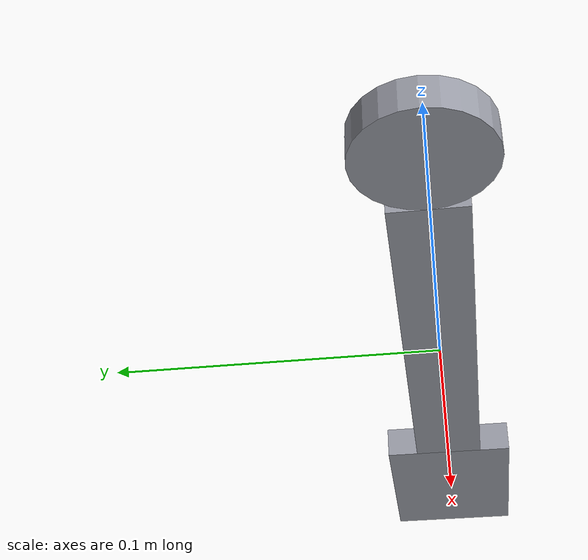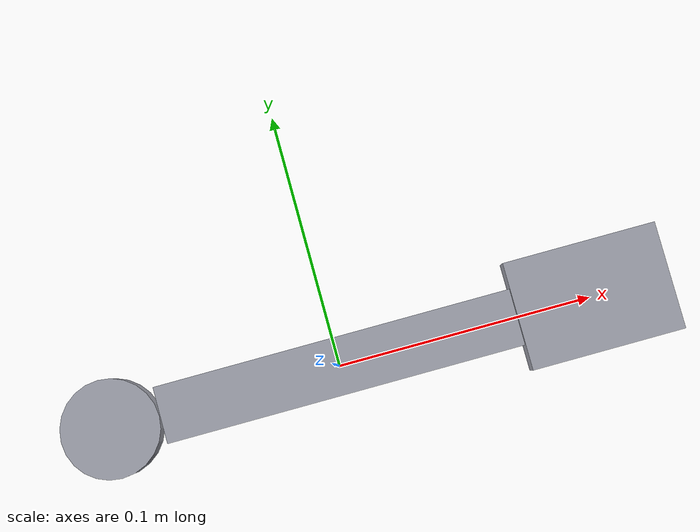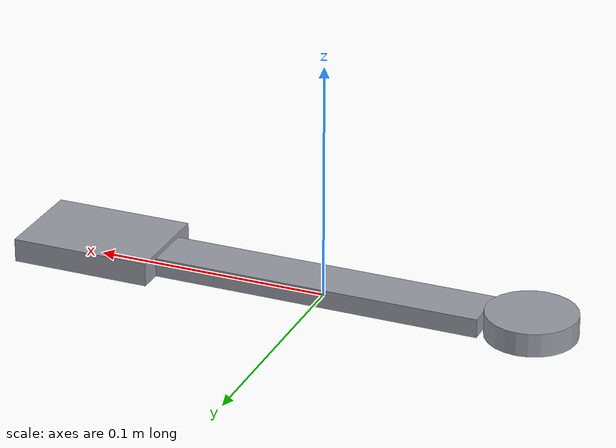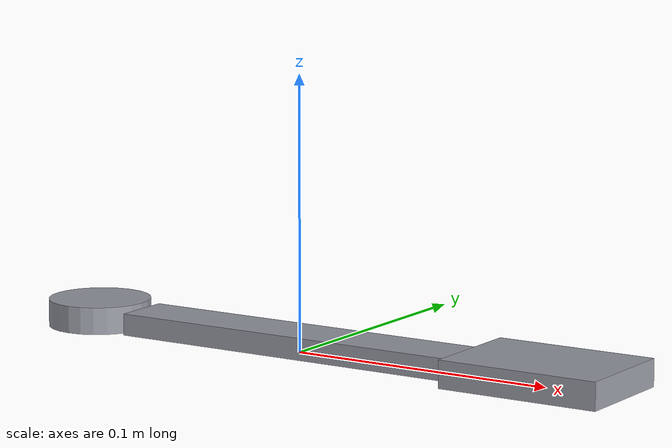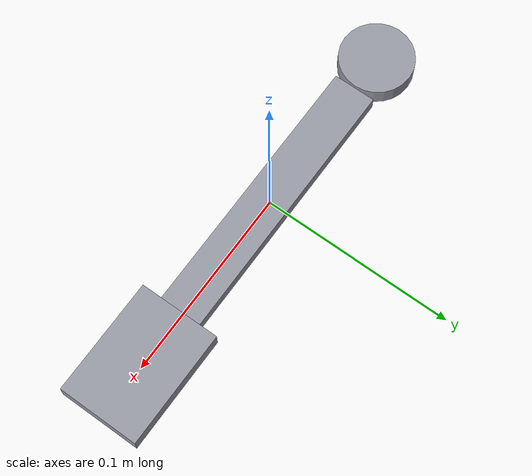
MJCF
<mujoco model="wrench">
  <!-- Combination wrench lying flat: 200 x 30 x 8 mm bar with two jaw ends, 0.25 kg steel.
       Thin: a real test of finger closure. Origin at the bottom centre.
       Self-authored primitive (CC0). -->
  <asset>
    <material name="mat" rgba="0.60 0.61 0.65 1"/>
  </asset>
  <worldbody>
    <body name="wrench">
      <freejoint/>
      <geom name="shaft" type="box" size="0.070 0.011 0.004" pos="0 0 0.004" mass="0.13"
            material="mat" condim="4" friction="0.7 0.01 0.0002" solimp="0.97 0.995 0.001" solref="0.006 1"/>
      <geom name="jaw_px" type="box" size="0.030 0.021 0.005" pos="0.100 0 0.005" mass="0.07"
            material="mat" condim="4" friction="0.7 0.01 0.0002" solimp="0.97 0.995 0.001" solref="0.006 1"/>
      <geom name="jaw_nx" type="cylinder" size="0.019 0.005" pos="-0.089 0 0.005" mass="0.05"
            material="mat" condim="4" friction="0.7 0.01 0.0002" solimp="0.97 0.995 0.001" solref="0.006 1"/>
    </body>
  </worldbody>
</mujoco>
